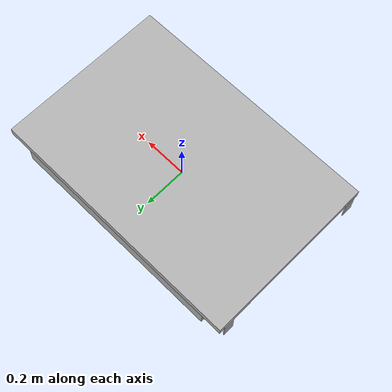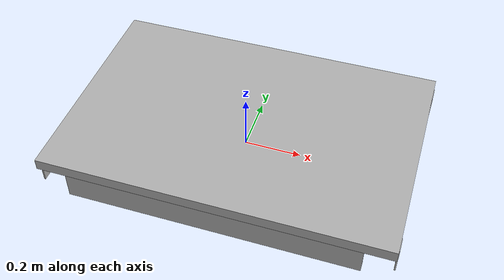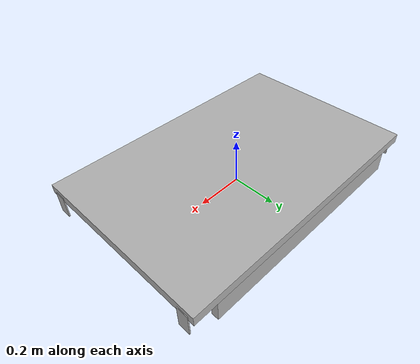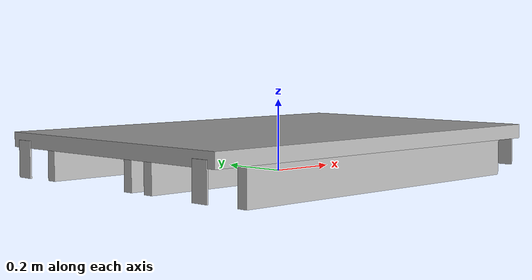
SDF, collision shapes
<?xml version='1.0'?>
<sdf version='1.6'>
  <model name='full_becket_model'>
    <link name='link_0'>
      <pose frame=''>0 0 0.0 0 -0 0.0</pose>
      <inertial>
         <mass>10</mass>
        <inertia>
          <ixx>0.166667</ixx>
          <ixy>0</ixy>
          <ixz>0</ixz>
          <iyy>0.166667</iyy>
          <iyz>0</iyz>
          <izz>0.166667</izz>
        </inertia>
        <pose frame=''>0 0 0 0 -0 0</pose>
      </inertial>
      <gravity>1</gravity>
      <self_collide>0</self_collide>
      <kinematic>0</kinematic>

    <!-- start becket and europallet definitions -->

      <visual name='becket'>
        <pose frame=''>0 0 0.13 0 0 1.57</pose>
        <geometry>
          <mesh>
		        <uri>model://full_becket_model/meshes/full_becket.dae</uri>
            <scale>1 1 1</scale>
          </mesh>
        </geometry>
        <cast_shadows>1</cast_shadows>
        <transparency>0</transparency>
      </visual>

      <visual name='europallet'>
        <pose frame=''>0 0.010 0 0 0 1.57</pose>
        <geometry>
          <mesh>
		<uri>model://full_becket_model/meshes/europallet.dae</uri>
            <scale>1 1 1</scale>
          </mesh>
        </geometry>
        <material>
          <lighting>1</lighting>
          <script>
            <uri>model://full_becket_model/materials/scripts</uri>
            <uri>model://full_becket_model/materials/textures</uri>
            <name>becket_model/Diffuse</name>
          </script>
          <ambient>0.3 0.3 0.3 1</ambient>
          <diffuse>0.7 0.7 0.7 1</diffuse>
          <specular>0.01 0.01 0.01 1</specular>
          <emissive>0 0 0 1</emissive>
          <shader type='vertex'>
            <normal_map>__default__</normal_map>
          </shader>
        </material>
        <cast_shadows>1</cast_shadows>
        <transparency>0</transparency>
      </visual>

      <collision name='collision0'>
        <laser_retro>0</laser_retro>
        <max_contacts>10</max_contacts>
        <pose frame=''>0.0 0.0 0.1 0.0 0.0 0.0</pose>
        <geometry>
          <box>
            <size>1.2 0.80 0.04</size>
          </box>
        </geometry>
      </collision>

      <collision name='collision1'>
        <laser_retro>0</laser_retro>
        <max_contacts>5</max_contacts>
        <pose frame='link_0'>0 -0.04 0.03 0 0 0</pose>
        <geometry>
          <box>
             <size>1.0 0.03 0.1</size>
          </box>
        </geometry>
      </collision>

     <collision name='collision2'>
        <laser_retro>0</laser_retro>
        <max_contacts>5</max_contacts>
       <pose frame='link_0'>0 0.04 0.03 0 0 0</pose>
        <geometry>
          <box>
            <size>1.0 0.03 0.1</size>
          </box>
        </geometry>
      </collision>

      <collision name='collision3'>
        <laser_retro>0</laser_retro>
        <max_contacts>5</max_contacts>
        <pose frame='link_0'>0 0.38 0.03 0 0 0</pose>
        <geometry>
          <box>
            <size>1.0 0.03 0.1</size>
          </box>
        </geometry>
      </collision>

      <collision name='collision4'>
        <laser_retro>0</laser_retro>
        <max_contacts>5</max_contacts>
        <pose frame='link_0'>0 -0.38 0.03 0 -0 0</pose>
        <geometry>
          <box>
            <size>1.0 0.03 0.1</size>
          </box>
        </geometry>
      </collision>
    </link>

  <!-- end becket and europallet definitions -->

     <!-- start reflectors definitions -->

    <link name='link_reflector_1'>
      <pose frame='link_0'>0.6 -0.35 0.05 0 0 0</pose>
      <gravity>0</gravity>

      <visual name='visual0'>
        <pose frame=''>0 0 0.0 0 0 0</pose>
        <geometry>
          <box><size>0.005 0.05 0.1</size></box>
        </geometry>
	<material>
          <lighting>1</lighting>
          <ambient>0.3 0.3 0.3 1</ambient>
          <diffuse>0.7 0.7 0.7 1</diffuse>
          <specular>0.01 0.01 0.01 1</specular>
          <emissive>0 0 0 1</emissive>
          <shader type='vertex'>
            <normal_map>__default__</normal_map>
          </shader>
        </material>
      </visual>
      <collision name='collision0'>
        <pose frame=''>0 0 -0.0 0 -0 0</pose>
        <geometry>
          <box><size>0.005 0.05 0.10</size></box>
        </geometry>
	<laser_retro>8000</laser_retro>
      </collision>
    </link>

    <link name='link_reflector_2'>
      <pose frame='link_0'>0.6 0.35 0.05 0 0 0</pose>
      <gravity>0</gravity>

      <visual name='visual0'>
        <pose frame=''>0 0 -0.0 0 -0 0</pose>
        <geometry>
           <box><size>0.005 0.05 0.1</size></box>
        </geometry>
	<material>
          <lighting>1</lighting>
          <ambient>0.3 0.3 0.3 1</ambient>
          <diffuse>0.7 0.7 0.7 1</diffuse>
          <specular>0.01 0.01 0.01 1</specular>
          <emissive>0 0 0 1</emissive>
          <shader type='vertex'>
            <normal_map>__default__</normal_map>
          </shader>
        </material>
      </visual>
      <collision name='collision0'>
        <pose frame=''>0 0 -0.0 0 -0 0</pose>
        <geometry>
          <box><size>0.005 0.05 0.10</size></box>
        </geometry>
	<laser_retro>8000</laser_retro>
      </collision>
    </link>

    <link name='link_reflector_3'>
       <pose frame='link_0'>-0.6 0.35 0.05 0 0 0</pose>
      <gravity>0</gravity>

      <visual name='visual0'>
        <pose frame=''>0 0 -0.0 0 -0 0</pose>
        <geometry>
         <box><size>0.005 0.05 0.1</size></box>
        </geometry>
	<material>
          <lighting>1</lighting>
          <ambient>0.3 0.3 0.3 1</ambient>
          <diffuse>0.7 0.7 0.7 1</diffuse>
          <specular>0.01 0.01 0.01 1</specular>
          <emissive>0 0 0 1</emissive>
          <shader type='vertex'>
            <normal_map>__default__</normal_map>
          </shader>
        </material>
      </visual>
      <collision name='collision0'>
        <pose frame=''>0 0 -0.0 0 -0 0</pose>
        <geometry>
          <box><size>0.005 0.05 0.10</size></box>
        </geometry>
	<laser_retro>8000</laser_retro>
      </collision>
    </link>

    <link name='link_reflector_4'>
      <pose frame='link_0'>-0.6 -0.35 0.05 0 0 0</pose>
      <gravity>0</gravity>

      <visual name='visual0'>
        <pose frame=''>0 0 -0.0 0 -0 0</pose>
        <geometry>
          <box><size>0.005 0.05 0.1</size></box>
        </geometry>
	<material>
          <lighting>1</lighting>
          <ambient>0.3 0.3 0.3 1</ambient>
          <diffuse>0.7 0.7 0.7 1</diffuse>
          <specular>0.01 0.01 0.01 1</specular>
          <emissive>0 0 0 1</emissive>
          <shader type='vertex'>
            <normal_map>__default__</normal_map>
          </shader>
        </material>
      </visual>
      <collision name='collision0'>
        <pose frame=''>0 0 -0.0 0 -0 0</pose>
        <geometry>
          <box><size>0.005 0.05 0.10</size></box>
        </geometry>
	<laser_retro>8000</laser_retro>
      </collision>
    </link>

    <joint name='joint_0_to_reflector_1' type='fixed'>
      <parent>link_0</parent>
      <child>link_reflector_1</child>
      <pose frame=''>0 0 0 0 -0 0</pose>
      <physics>
        <ode>
          <limit>
            <cfm>0</cfm>
            <erp>0.2</erp>
          </limit>
          <suspension>
            <cfm>0</cfm>
            <erp>0.2</erp>
          </suspension>
        </ode>
      </physics>
    </joint>
    <joint name='joint_0_to_reflector_2' type='fixed'>
      <parent>link_0</parent>
      <child>link_reflector_2</child>
      <pose frame=''>0 0 0 0 -0 0</pose>
      <physics>
        <ode>
          <limit>
            <cfm>0</cfm>
            <erp>0.2</erp>
          </limit>
          <suspension>
            <cfm>0</cfm>
            <erp>0.2</erp>
          </suspension>
        </ode>
      </physics>
    </joint>
    <joint name='joint_0_to_reflector_3' type='fixed'>
      <parent>link_0</parent>
      <child>link_reflector_3</child>
      <pose frame=''>0 0 0 0 -0 0</pose>
      <physics>
        <ode>
          <limit>
            <cfm>0</cfm>
            <erp>0.2</erp>
          </limit>
          <suspension>
            <cfm>0</cfm>
            <erp>0.2</erp>
          </suspension>
        </ode>
      </physics>
    </joint>
    <joint name='joint_0_to_reflector_4' type='fixed'>
      <parent>link_0</parent>
      <child>link_reflector_4</child>
      <pose frame=''>0 0 0 0 -0 0</pose>
      <physics>
        <ode>
          <limit>
            <cfm>0</cfm>
            <erp>0.2</erp>
          </limit>
          <suspension>
            <cfm>0</cfm>
            <erp>0.2</erp>
          </suspension>
        </ode>
      </physics>
    </joint>

    <static>0</static>
    <allow_auto_disable>1</allow_auto_disable>
  </model>
</sdf>
